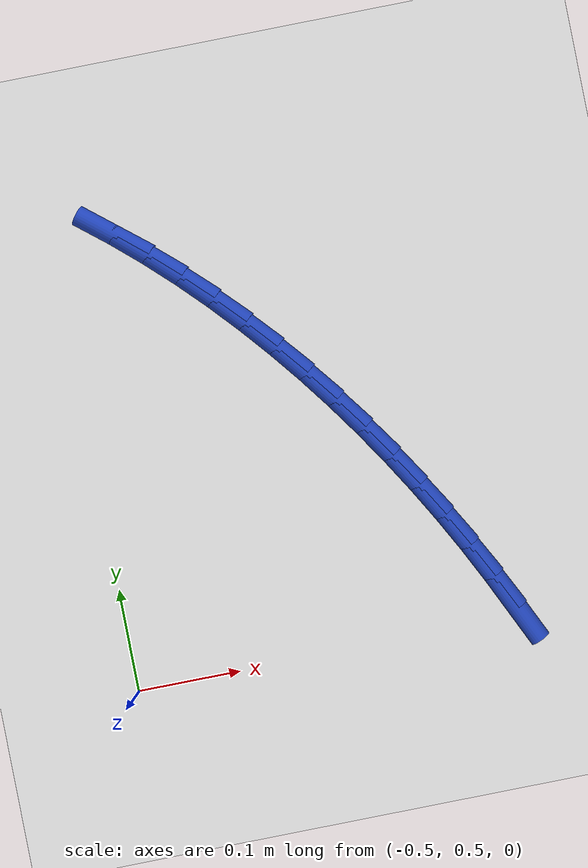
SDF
<sdf version="1.6">
 <world name="default">
  <model name="ground_plane">
   <static>1</static>
   <link name="link">
    <collision name="collision">
     <geometry><plane><normal>0 0 1</normal><size>100 100</size></plane></geometry>
     <surface><friction><ode><mu>100</mu><mu2>50</mu2></ode></friction></surface>
    </collision>
    <visual name="visual">
     <cast_shadows>0</cast_shadows>
     <geometry><plane><normal>0 0 1</normal><size>100 100</size></plane></geometry>
     <material>
      <script><uri>file://media/materials/scripts/gazebo.material</uri><name>Gazebo/WhiteGlow</name></script>
     </material>
    </visual>
   </link>
  </model>
  <model name="line">
   <link name="link_14">
    <pose>-0.1255350163428818 0.5121944858948895 0.01 0 1.57 -1.1315724814242831</pose>
    <collision name="collision">
     <geometry><cylinder><radius>0.01</radius><length>0.08</length></cylinder></geometry>
    </collision>
    <visual name="visual">
     <material>
      <script><name>Gazebo/Blue</name><uri>file://media/materials/scripts/gazebo.material</uri></script>
     </material>
     <geometry><cylinder><radius>0.01</radius><length>0.08</length></cylinder></geometry>
    </visual>
   </link>
   <link name="link_15">
    <pose>-0.14163646561589296 0.5464650877489929 0.01 0 1.57 -1.1048660256667926</pose>
    <collision name="collision">
     <geometry><cylinder><radius>0.01</radius><length>0.08</length></cylinder></geometry>
    </collision>
    <visual name="visual">
     <material>
      <script><name>Gazebo/Blue</name><uri>file://media/materials/scripts/gazebo.material</uri></script>
     </material>
     <geometry><cylinder><radius>0.01</radius><length>0.08</length></cylinder></geometry>
    </visual>
   </link>
   <link name="link_16">
    <pose>-0.1586456267452459 0.5802901585482021 0.01 0 1.57 -1.0774989569841948</pose>
    <collision name="collision">
     <geometry><cylinder><radius>0.01</radius><length>0.08</length></cylinder></geometry>
    </collision>
    <visual name="visual">
     <material>
      <script><name>Gazebo/Blue</name><uri>file://media/materials/scripts/gazebo.material</uri></script>
     </material>
     <geometry><cylinder><radius>0.01</radius><length>0.08</length></cylinder></geometry>
    </visual>
   </link>
   <link name="link_17">
    <pose>-0.1765781610107057 0.6136448772012777 0.01 0 1.57 -1.0494806827380845</pose>
    <collision name="collision">
     <geometry><cylinder><radius>0.01</radius><length>0.08</length></cylinder></geometry>
    </collision>
    <visual name="visual">
     <material>
      <script><name>Gazebo/Blue</name><uri>file://media/materials/scripts/gazebo.material</uri></script>
     </material>
     <geometry><cylinder><radius>0.01</radius><length>0.08</length></cylinder></geometry>
    </visual>
   </link>
   <link name="link_18">
    <pose>-0.19544972969203764 0.6465044226169814 0.01 0 1.57 -1.0208251611801238</pose>
    <collision name="collision">
     <geometry><cylinder><radius>0.01</radius><length>0.08</length></cylinder></geometry>
    </collision>
    <visual name="visual">
     <material>
      <script><name>Gazebo/Blue</name><uri>file://media/materials/scripts/gazebo.material</uri></script>
     </material>
     <geometry><cylinder><radius>0.01</radius><length>0.08</length></cylinder></geometry>
    </visual>
   </link>
   <link name="link_19">
    <pose>-0.2152759940690065 0.6788439737040735 0.01 0 1.57 -0.9915511983826559</pose>
    <collision name="collision">
     <geometry><cylinder><radius>0.01</radius><length>0.08</length></cylinder></geometry>
    </collision>
    <visual name="visual">
     <material>
      <script><name>Gazebo/Blue</name><uri>file://media/materials/scripts/gazebo.material</uri></script>
     </material>
     <geometry><cylinder><radius>0.01</radius><length>0.08</length></cylinder></geometry>
    </visual>
   </link>
   <link name="link_20">
    <pose>-0.23607261542137753 0.7106387093713151 0.01 0 1.57 -0.9616801785968428</pose>
    <collision name="collision">
     <geometry><cylinder><radius>0.01</radius><length>0.08</length></cylinder></geometry>
    </collision>
    <visual name="visual">
     <material>
      <script><name>Gazebo/Blue</name><uri>file://media/materials/scripts/gazebo.material</uri></script>
     </material>
     <geometry><cylinder><radius>0.01</radius><length>0.08</length></cylinder></geometry>
    </visual>
   </link>
   <link name="link_21">
    <pose>-0.25785485416579945 0.7418630666074738 0.01 0 1.57 -0.9311301973567846</pose>
    <collision name="collision">
     <geometry><cylinder><radius>0.01</radius><length>0.08</length></cylinder></geometry>
    </collision>
    <visual name="visual">
     <material>
      <script><name>Gazebo/Blue</name><uri>file://media/materials/scripts/gazebo.material</uri></script>
     </material>
     <geometry><cylinder><radius>0.01</radius><length>0.08</length></cylinder></geometry>
    </visual>
   </link>
   <link name="link_22">
    <pose>-0.28062420440148644 0.7724660036138558 0.01 0 1.57 -0.899702229620366</pose>
    <collision name="collision">
     <geometry><cylinder><radius>0.01</radius><length>0.08</length></cylinder></geometry>
    </collision>
    <visual name="visual">
     <material>
      <script><name>Gazebo/Blue</name><uri>file://media/materials/scripts/gazebo.material</uri></script>
     </material>
     <geometry><cylinder><radius>0.01</radius><length>0.08</length></cylinder></geometry>
    </visual>
   </link>
   <link name="link_23">
    <pose>-0.3043652628468318 0.8023652048123683 0.01 0 1.57 -0.8672646880997724</pose>
    <collision name="collision">
     <geometry><cylinder><radius>0.01</radius><length>0.08</length></cylinder></geometry>
    </collision>
    <visual name="visual">
     <material>
      <script><name>Gazebo/Blue</name><uri>file://media/materials/scripts/gazebo.material</uri></script>
     </material>
     <geometry><cylinder><radius>0.01</radius><length>0.08</length></cylinder></geometry>
    </visual>
   </link>
   <link name="link_24">
    <pose>-0.3290615908885704 0.8314764384265299 0.01 0 1.57 -0.833693095139707</pose>
    <collision name="collision">
     <geometry><cylinder><radius>0.01</radius><length>0.08</length></cylinder></geometry>
    </collision>
    <visual name="visual">
     <material>
      <script><name>Gazebo/Blue</name><uri>file://media/materials/scripts/gazebo.material</uri></script>
     </material>
     <geometry><cylinder><radius>0.01</radius><length>0.08</length></cylinder></geometry>
    </visual>
   </link>
   <link name="link_25">
    <pose>-0.35469674991343736 0.8597154726798607 0.01 0 1.57 -0.7988640960731563</pose>
    <collision name="collision">
     <geometry><cylinder><radius>0.01</radius><length>0.08</length></cylinder></geometry>
    </collision>
    <visual name="visual">
     <material>
      <script><name>Gazebo/Blue</name><uri>file://media/materials/scripts/gazebo.material</uri></script>
     </material>
     <geometry><cylinder><radius>0.01</radius><length>0.08</length></cylinder></geometry>
    </visual>
   </link>
   <link name="link_26">
    <pose>-0.3812543013081674 0.8869980757958794 0.01 0 1.57 -0.7626564406219956</pose>
    <collision name="collision">
     <geometry><cylinder><radius>0.01</radius><length>0.08</length></cylinder></geometry>
    </collision>
    <visual name="visual">
     <material>
      <script><name>Gazebo/Blue</name><uri>file://media/materials/scripts/gazebo.material</uri></script>
     </material>
     <geometry><cylinder><radius>0.01</radius><length>0.08</length></cylinder></geometry>
    </visual>
   </link>
   <link name="link_27">
    <pose>-0.4087178064594955 0.9132400159981052 0.01 0 1.57 -0.7249525158089852</pose>
    <collision name="collision">
     <geometry><cylinder><radius>0.01</radius><length>0.08</length></cylinder></geometry>
    </collision>
    <visual name="visual">
     <material>
      <script><name>Gazebo/Blue</name><uri>file://media/materials/scripts/gazebo.material</uri></script>
     </material>
     <geometry><cylinder><radius>0.01</radius><length>0.08</length></cylinder></geometry>
    </visual>
   </link>
   <link name="link_28">
    <pose>-0.4370708267541571 0.9383570615100579 0.01 0 1.57 -0.6856405121485841</pose>
    <collision name="collision">
     <geometry><cylinder><radius>0.01</radius><length>0.08</length></cylinder></geometry>
    </collision>
    <visual name="visual">
     <material>
      <script><name>Gazebo/Blue</name><uri>file://media/materials/scripts/gazebo.material</uri></script>
     </material>
     <geometry><cylinder><radius>0.01</radius><length>0.08</length></cylinder></geometry>
    </visual>
   </link>
  </model>
 </world>
</sdf>
